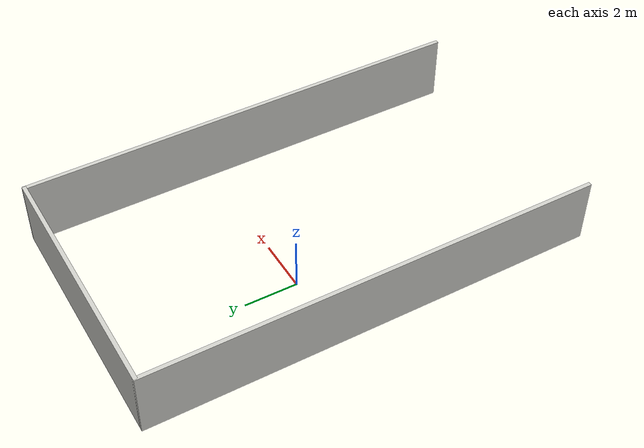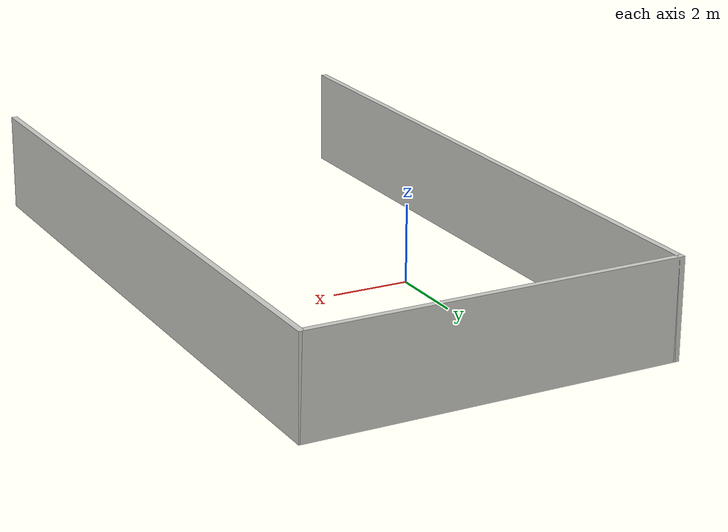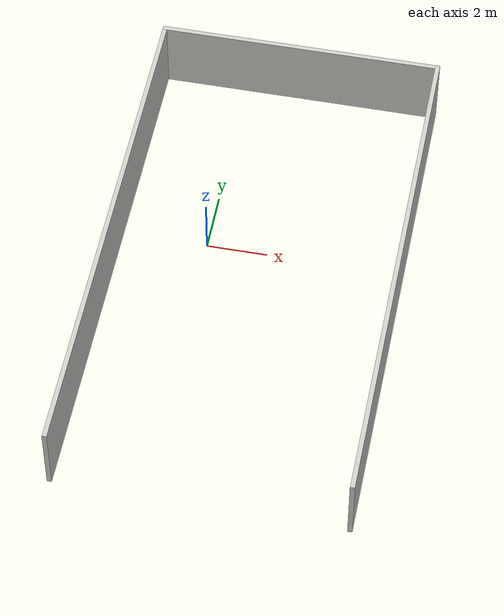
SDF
<?xml version='1.0'?>
<sdf version='1.6'>
  <model name='gazebo_course_1_medium'>
    <pose frame=''>1.79278 -1.41477 0 0 -0 0</pose>
    <link name='Wall_2'>
      <collision name='Wall_2_Collision'>
        <geometry>
          <box>
            <size>17 0.15 2.5</size>
          </box>
        </geometry>
        <pose frame=''>0 0 1.25 0 -0 0</pose>
      </collision>
      <visual name='Wall_2_Visual'>
        <pose frame=''>0 0 1.25 0 -0 0</pose>
        <geometry>
          <box>
            <size>17 0.15 2.5</size>
          </box>
        </geometry>
        <material>
          <script>
            <uri>file://media/materials/scripts/gazebo.material</uri>
            <name>Gazebo/CeilingTiled</name>
          </script>
          <ambient>1 1 1 1</ambient>
        </material>
        <meta>
          <layer>0</layer>
        </meta>
      </visual>
      <pose frame=''>-4.67522 0.000232 0 0 -0 1.5708</pose>
    </link>
    <link name='Wall_4'>
      <collision name='Wall_4_Collision'>
        <geometry>
          <box>
            <size>9.5 0.15 2.5</size>
          </box>
        </geometry>
        <pose frame=''>0 0 1.25 0 -0 0</pose>
      </collision>
      <visual name='Wall_4_Visual'>
        <pose frame=''>0 0 1.25 0 -0 0</pose>
        <geometry>
          <box>
            <size>9.5 0.15 2.5</size>
          </box>
        </geometry>
        <material>
          <script>
            <uri>file://media/materials/scripts/gazebo.material</uri>
            <name>Gazebo/CeilingTiled</name>
          </script>
          <ambient>1 1 1 1</ambient>
        </material>
        <meta>
          <layer>0</layer>
        </meta>
      </visual>
      <pose frame=''>-0 8.425 0 0 -0 -5e-05</pose>
    </link>
    <link name='Wall_5'>
      <collision name='Wall_5_Collision'>
        <geometry>
          <box>
            <size>17 0.15 2.5</size>
          </box>
        </geometry>
        <pose frame=''>0 0 1.25 0 -0 0</pose>
      </collision>
      <visual name='Wall_5_Visual'>
        <pose frame=''>0 0 1.25 0 -0 0</pose>
        <geometry>
          <box>
            <size>17 0.15 2.5</size>
          </box>
        </geometry>
        <material>
          <script>
            <uri>file://media/materials/scripts/gazebo.material</uri>
            <name>Gazebo/CeilingTiled</name>
          </script>
          <ambient>1 1 1 1</ambient>
        </material>
        <meta>
          <layer>0</layer>
        </meta>
      </visual>
      <pose frame=''>4.67522 -0.000234 0 0 -0 -1.5708</pose>
    </link>
    <static>1</static>
  </model>
</sdf>
